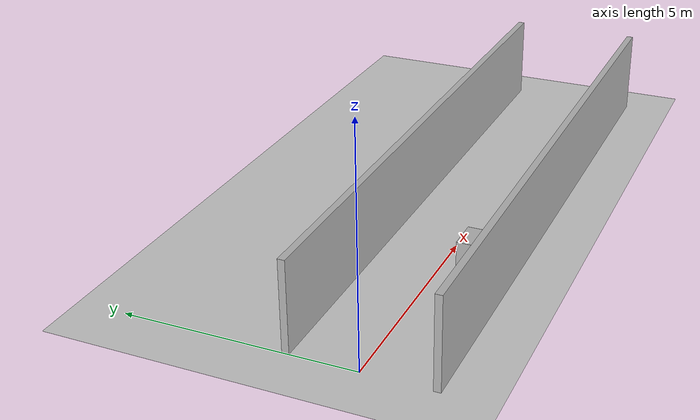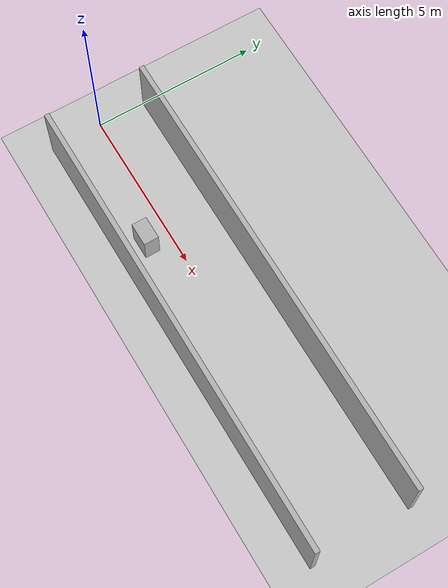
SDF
<?xml version="1.0"?>
<sdf version="1.9">
  <world name="hospital_corridor">
    <plugin filename="gz-sim-physics-system" name="gz::sim::systems::Physics"/>
    <plugin filename="gz-sim-scene-broadcaster-system" name="gz::sim::systems::SceneBroadcaster"/>
    <include><uri>model://sun</uri></include>
    <include><uri>model://ground_plane</uri></include>
    <model name="north_wall"><static>true</static><pose>7 1.5 1 0 0 0</pose><link name="link"><collision name="c"><geometry><box><size>14 0.15 2</size></box></geometry></collision><visual name="v"><geometry><box><size>14 0.15 2</size></box></geometry></visual></link></model>
    <model name="south_wall"><static>true</static><pose>7 -1.5 1 0 0 0</pose><link name="link"><collision name="c"><geometry><box><size>14 0.15 2</size></box></geometry></collision><visual name="v"><geometry><box><size>14 0.15 2</size></box></geometry></visual></link></model>
    <model name="medical_cart"><static>true</static><pose>4 -0.7 0.45 0 0 0</pose><link name="link"><collision name="c"><geometry><box><size>0.7 0.45 0.9</size></box></geometry></collision><visual name="v"><geometry><box><size>0.7 0.45 0.9</size></box></geometry></visual></link></model>
  </world>
</sdf>
